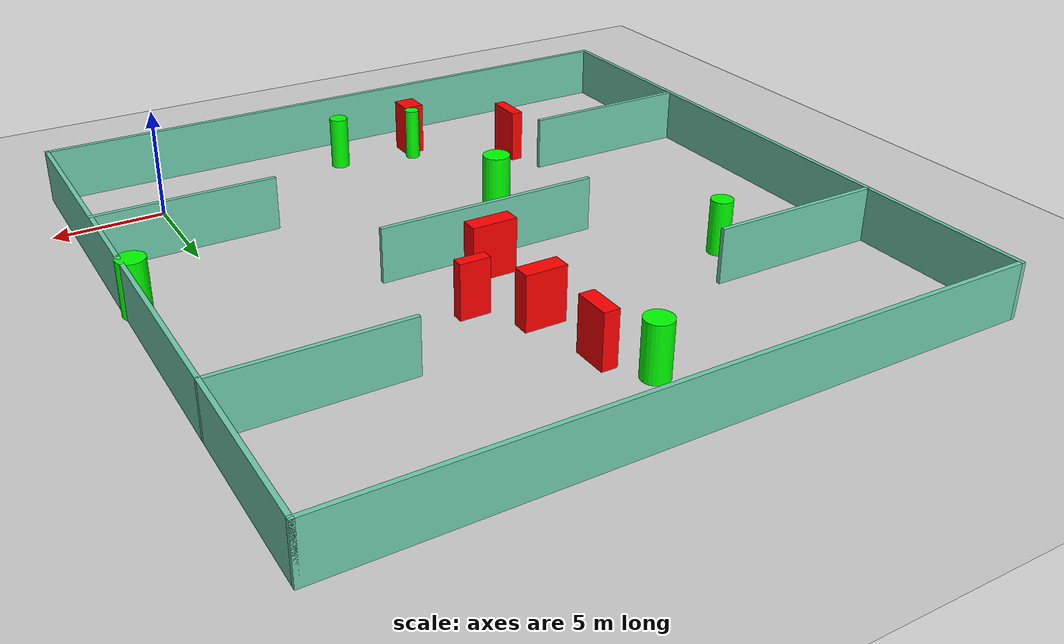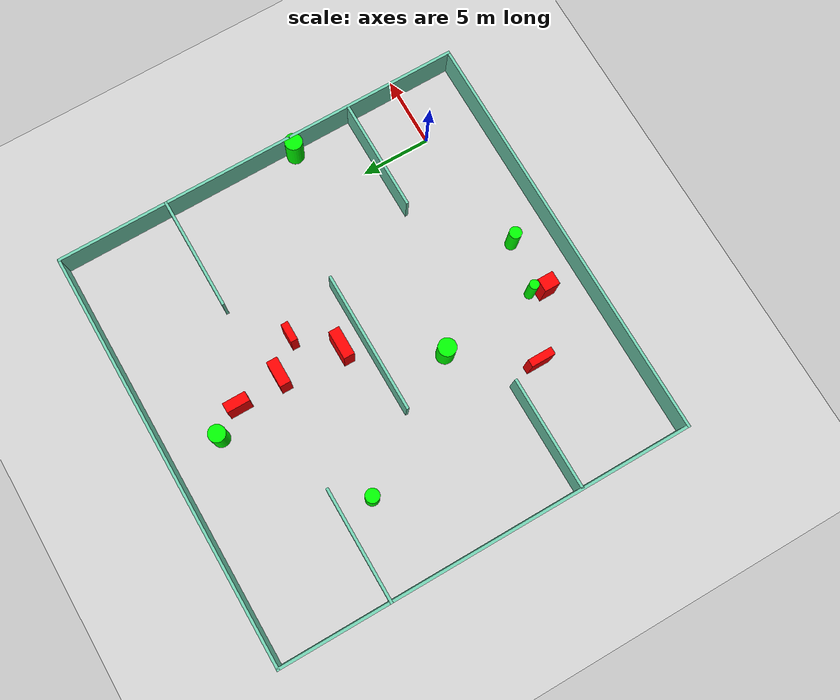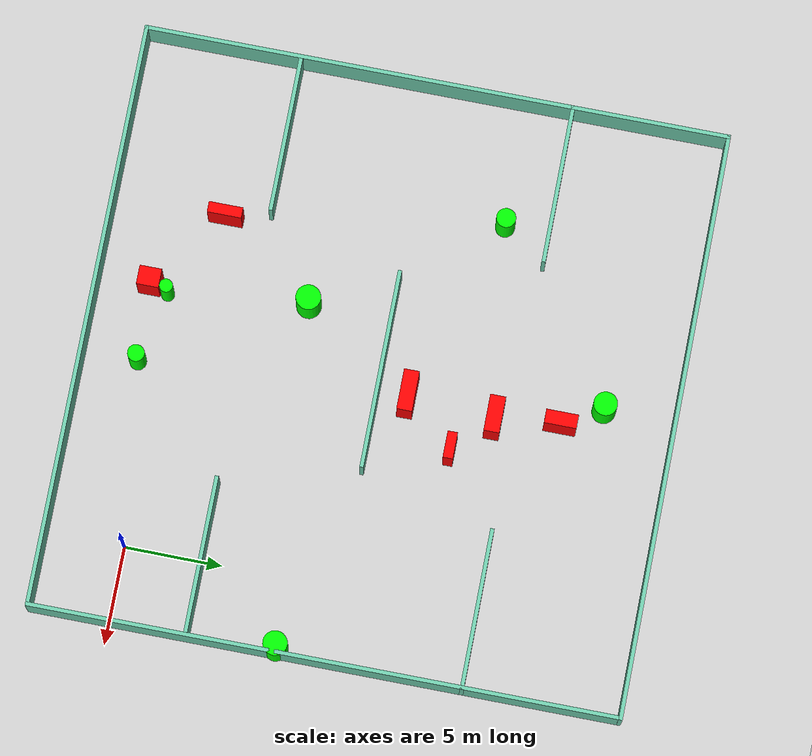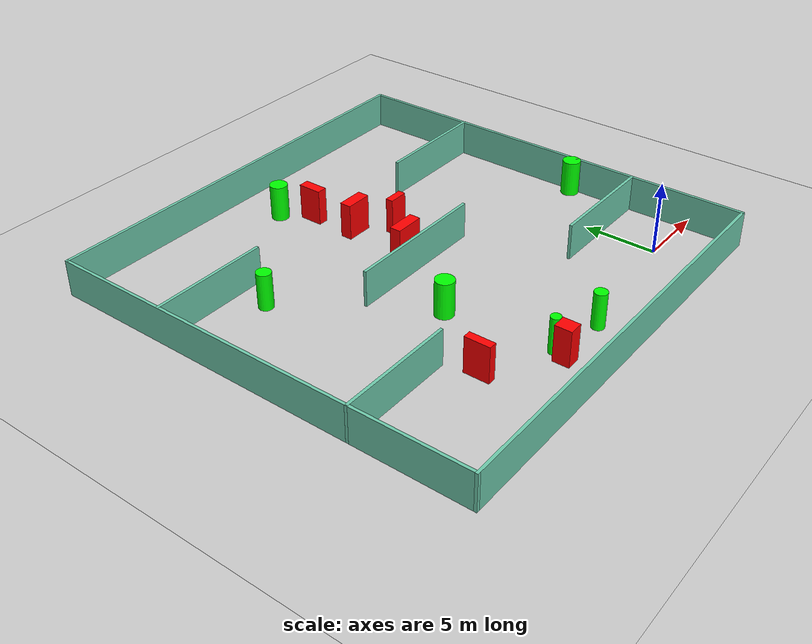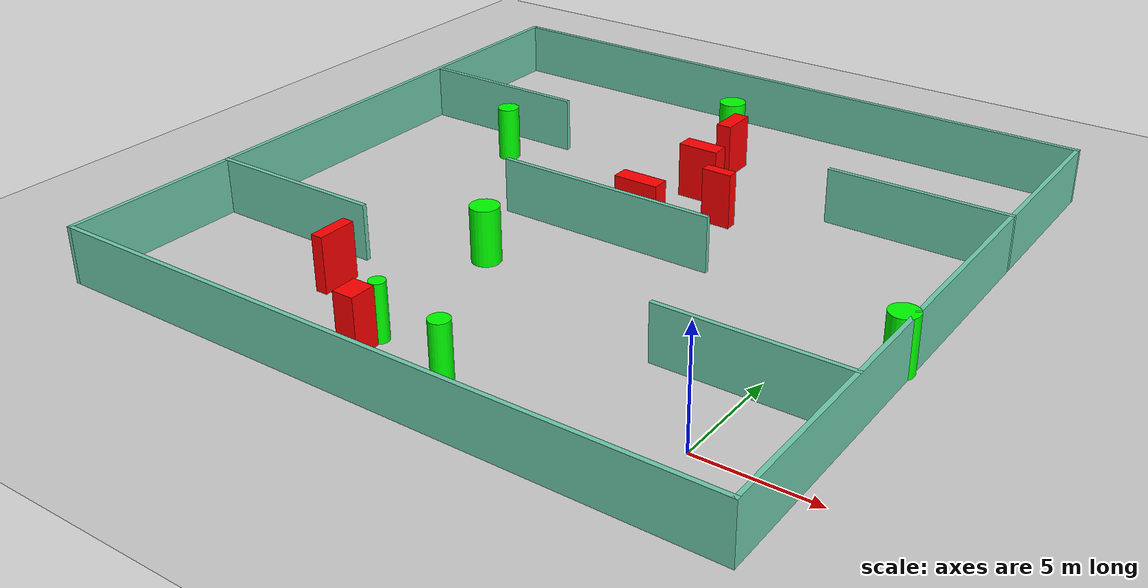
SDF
<sdf version="1.7">
 <world name="default">
  <light name="sun" type="directional">
   <pose>0 0 10 0 -0 0</pose>
   <diffuse>0.8 0.8 0.8 1</diffuse>
   <specular>0.2 0.2 0.2 1</specular>
   <attenuation>
    <range>1000</range>
    <constant>0.9</constant>
    <linear>0.01</linear>
    <quadratic>0.001</quadratic>
   </attenuation>
   <direction>-0.5 0.1 -0.9</direction>
   <spot><inner_angle>0</inner_angle><outer_angle>0</outer_angle><falloff>0</falloff></spot>
  </light>
  <model name="ground_plane">
   <static>1</static>
   <link name="link">
    <collision name="collision">
     <geometry><plane><normal>0 0 1</normal><size>100 100</size></plane></geometry>
     <surface>
      <contact><collide_bitmask>65535</collide_bitmask></contact>
      <friction><ode><mu>100</mu><mu2>50</mu2></ode></friction>
     </surface>
    </collision>
    <visual name="visual">
     <cast_shadows>0</cast_shadows>
     <geometry><plane><normal>0 0 1</normal><size>100 100</size></plane></geometry>
     <material>
      <script><uri>file://media/materials/scripts/gazebo.material</uri><name>Gazebo/Grey</name></script>
     </material>
    </visual>
   </link>
  </model>
  <gravity>0 0 -9.8</gravity>
  <magnetic_field>6e-06 2.3e-05 -4.2e-05</magnetic_field>
  <atmosphere type="adiabatic"/>
  <physics type="ode">
   <max_step_size>0.001</max_step_size>
   <real_time_factor>1</real_time_factor>
   <real_time_update_rate>1000</real_time_update_rate>
  </physics>
  <scene><ambient>0.4 0.4 0.4 1</ambient><background>0.7 0.7 0.7 1</background><shadows>1</shadows></scene>
  <spherical_coordinates>
   <surface_model>EARTH_WGS84</surface_model>
   <latitude_deg>0</latitude_deg>
   <longitude_deg>0</longitude_deg>
   <elevation>0</elevation>
   <heading_deg>0</heading_deg>
  </spherical_coordinates>
  <model name="my_base_walls">
   <link name="Wall_10">
    <collision name="Wall_10_Collision">
     <geometry><box><size>8.2 0.2 2.5</size></box></geometry>
     <pose>0 0 1.25 0 -0 0</pose>
    </collision>
    <visual name="Wall_10_Visual">
     <pose>0 0 1.25 0 -0 0</pose>
     <geometry><box><size>8.2 0.2 2.5</size></box></geometry>
     <material>
      <script><uri>file://media/materials/scripts/gazebo.material</uri><name>Gazebo/Grey</name></script>
      <ambient>0.435294 0.796078 0.67451 1</ambient>
     </material>
     <meta><layer>0</layer></meta>
    </visual>
    <pose>-11 -7 0 0 -0 0</pose>
   </link>
   <link name="Wall_12">
    <collision name="Wall_12_Collision">
     <geometry><box><size>8.2 0.2 2.5</size></box></geometry>
     <pose>0 0 1.25 0 -0 0</pose>
    </collision>
    <visual name="Wall_12_Visual">
     <pose>0 0 1.25 0 -0 0</pose>
     <geometry><box><size>8.2 0.2 2.5</size></box></geometry>
     <material>
      <script><uri>file://media/materials/scripts/gazebo.material</uri><name>Gazebo/Grey</name></script>
      <ambient>0.435294 0.796078 0.67451 1</ambient>
     </material>
     <meta><layer>0</layer></meta>
    </visual>
    <pose>-11 7 0 0 -0 0</pose>
   </link>
   <link name="Wall_14">
    <collision name="Wall_14_Collision">
     <geometry><box><size>8.2 0.2 2.5</size></box></geometry>
     <pose>0 0 1.25 0 -0 0</pose>
    </collision>
    <visual name="Wall_14_Visual">
     <pose>0 0 1.25 0 -0 0</pose>
     <geometry><box><size>8.2 0.2 2.5</size></box></geometry>
     <material>
      <script><uri>file://media/materials/scripts/gazebo.material</uri><name>Gazebo/Grey</name></script>
      <ambient>0.435294 0.796078 0.67451 1</ambient>
     </material>
     <meta><layer>0</layer></meta>
    </visual>
    <pose>11 7 0 0 -0 3.14159</pose>
   </link>
   <link name="Wall_16">
    <collision name="Wall_16_Collision">
     <geometry><box><size>10.2 0.2 2.5</size></box></geometry>
     <pose>0 0 1.25 0 -0 0</pose>
    </collision>
    <visual name="Wall_16_Visual">
     <pose>0 0 1.25 0 -0 0</pose>
     <geometry><box><size>10.2 0.2 2.5</size></box></geometry>
     <material>
      <script><uri>file://media/materials/scripts/gazebo.material</uri><name>Gazebo/Grey</name></script>
      <ambient>0.435294 0.796078 0.67451 1</ambient>
     </material>
     <meta><layer>0</layer></meta>
    </visual>
    <pose>0 0 0 0 -0 3.14159</pose>
   </link>
   <link name="Wall_2">
    <collision name="Wall_2_Collision">
     <geometry><box><size>30.2 0.2 2.5</size></box></geometry>
     <pose>0 0 1.25 0 -0 0</pose>
    </collision>
    <visual name="Wall_2_Visual">
     <pose>0 0 1.25 0 -0 0</pose>
     <geometry><box><size>30.2 0.2 2.5</size></box></geometry>
     <material>
      <script><uri>file://media/materials/scripts/gazebo.material</uri><name>Gazebo/Grey</name></script>
      <ambient>0.435294 0.796078 0.67451 1</ambient>
     </material>
     <meta><layer>0</layer></meta>
    </visual>
    <pose>0 -15 0 0 -0 3.14159</pose>
   </link>
   <link name="Wall_3">
    <collision name="Wall_3_Collision">
     <geometry><box><size>30.2 0.2 2.5</size></box></geometry>
     <pose>0 0 1.25 0 -0 0</pose>
    </collision>
    <visual name="Wall_3_Visual">
     <pose>0 0 1.25 0 -0 0</pose>
     <geometry><box><size>30.2 0.2 2.5</size></box></geometry>
     <material>
      <script><uri>file://media/materials/scripts/gazebo.material</uri><name>Gazebo/Grey</name></script>
      <ambient>0.435294 0.796078 0.67451 1</ambient>
     </material>
     <meta><layer>0</layer></meta>
    </visual>
    <pose>-15 0 0 0 -0 1.5708</pose>
   </link>
   <link name="Wall_4">
    <collision name="Wall_4_Collision">
     <geometry><box><size>30.2 0.2 2.5</size></box></geometry>
     <pose>0 0 1.25 0 -0 0</pose>
    </collision>
    <visual name="Wall_4_Visual">
     <pose>0 0 1.25 0 -0 0</pose>
     <geometry><box><size>30.2 0.2 2.5</size></box></geometry>
     <material>
      <script><uri>file://media/materials/scripts/gazebo.material</uri><name>Gazebo/Grey</name></script>
      <ambient>0.435294 0.796078 0.67451 1</ambient>
     </material>
     <meta><layer>0</layer></meta>
    </visual>
    <pose>0 15 0 0 -0 0</pose>
   </link>
   <link name="Wall_6">
    <collision name="Wall_6_Collision">
     <geometry><box><size>30.2 0.2 2.5</size></box></geometry>
     <pose>0 0 1.25 0 -0 0</pose>
    </collision>
    <visual name="Wall_6_Visual">
     <pose>0 0 1.25 0 -0 0</pose>
     <geometry><box><size>30.2 0.2 2.5</size></box></geometry>
     <material>
      <script><uri>file://media/materials/scripts/gazebo.material</uri><name>Gazebo/Grey</name></script>
      <ambient>0.435294 0.796078 0.67451 1</ambient>
     </material>
     <meta><layer>0</layer></meta>
    </visual>
    <pose>15 0 0 0 -0 1.5708</pose>
   </link>
   <link name="Wall_8">
    <collision name="Wall_8_Collision">
     <geometry><box><size>8.2 0.2 2.5</size></box></geometry>
     <pose>0 0 1.25 0 -0 0</pose>
    </collision>
    <visual name="Wall_8_Visual">
     <pose>0 0 1.25 0 -0 0</pose>
     <geometry><box><size>8.2 0.2 2.5</size></box></geometry>
     <material>
      <script><uri>file://media/materials/scripts/gazebo.material</uri><name>Gazebo/Grey</name></script>
      <ambient>0.435294 0.796078 0.67451 1</ambient>
     </material>
     <meta><layer>0</layer></meta>
    </visual>
    <pose>11 -7 0 0 -0 3.14159</pose>
   </link>
   <static>1</static>
   <pose>-11 11 0 0 -0 0</pose>
  </model>
  <model name="cylinder1">
   <static>1</static>
   <link name="link">
    <inertial>
     <mass>1</mass>
     <inertia><ixx>0.5</ixx><ixy>0</ixy><ixz>0</ixz><iyy>0.5</iyy><iyz>0</iyz><izz>1</izz></inertia>
    </inertial>
    <collision name="collision">
     <geometry><cylinder><radius>0.3443012919250671</radius><length>2.5</length></cylinder></geometry>
    </collision>
    <visual name="visual">
     <geometry><cylinder><radius>0.3443012919250671</radius><length>2.5</length></cylinder></geometry>
     <material>
      <ambient>0 1 0 1</ambient>
      <diffuse>0 1 0 1</diffuse>
      <specular>0.1 0.1 0.1 1</specular>
      <emissive>0 0 0 0</emissive>
     </material>
    </visual>
   </link>
   <pose>-13.101906956500972 -0.40080572191109853 1.25 0 0 0</pose>
  </model>
  <model name="cylinder2">
   <static>1</static>
   <link name="link">
    <inertial>
     <mass>1</mass>
     <inertia><ixx>0.5</ixx><ixy>0</ixy><ixz>0</ixz><iyy>0.5</iyy><iyz>0</iyz><izz>1</izz></inertia>
    </inertial>
    <collision name="collision">
     <geometry><cylinder><radius>0.6242023429719257</radius><length>2.5</length></cylinder></geometry>
    </collision>
    <visual name="visual">
     <geometry><cylinder><radius>0.6242023429719257</radius><length>2.5</length></cylinder></geometry>
     <material>
      <ambient>0 1 0 1</ambient>
      <diffuse>0 1 0 1</diffuse>
      <specular>0.1 0.1 0.1 1</specular>
      <emissive>0 0 0 0</emissive>
     </material>
    </visual>
   </link>
   <pose>3.5841282925572315 8.475043361144198 1.25 0 0 0</pose>
  </model>
  <model name="cylinder3">
   <static>1</static>
   <link name="link">
    <inertial>
     <mass>1</mass>
     <inertia><ixx>0.5</ixx><ixy>0</ixy><ixz>0</ixz><iyy>0.5</iyy><iyz>0</iyz><izz>1</izz></inertia>
    </inertial>
    <collision name="collision">
     <geometry><cylinder><radius>0.4965596192162449</radius><length>2.5</length></cylinder></geometry>
    </collision>
    <visual name="visual">
     <geometry><cylinder><radius>0.4965596192162449</radius><length>2.5</length></cylinder></geometry>
     <material>
      <ambient>0 1 0 1</ambient>
      <diffuse>0 1 0 1</diffuse>
      <specular>0.1 0.1 0.1 1</specular>
      <emissive>0 0 0 0</emissive>
     </material>
    </visual>
   </link>
   <pose>-19.757732893890733 15.740929418561201 1.25 0 0 0</pose>
  </model>
  <model name="cylinder4">
   <static>1</static>
   <link name="link">
    <inertial>
     <mass>1</mass>
     <inertia><ixx>0.5</ixx><ixy>0</ixy><ixz>0</ixz><iyy>0.5</iyy><iyz>0</iyz><izz>1</izz></inertia>
    </inertial>
    <collision name="collision">
     <geometry><cylinder><radius>0.4374805088878376</radius><length>2.5</length></cylinder></geometry>
    </collision>
    <visual name="visual">
     <geometry><cylinder><radius>0.4374805088878376</radius><length>2.5</length></cylinder></geometry>
     <material>
      <ambient>0 1 0 1</ambient>
      <diffuse>0 1 0 1</diffuse>
      <specular>0.1 0.1 0.1 1</specular>
      <emissive>0 0 0 0</emissive>
     </material>
    </visual>
   </link>
   <pose>-9.438640255684591 -1.2013782013210323 1.25 0 0 0</pose>
  </model>
  <model name="cylinder5">
   <static>1</static>
   <link name="link">
    <inertial>
     <mass>1</mass>
     <inertia><ixx>0.5</ixx><ixy>0</ixy><ixz>0</ixz><iyy>0.5</iyy><iyz>0</iyz><izz>1</izz></inertia>
    </inertial>
    <collision name="collision">
     <geometry><cylinder><radius>0.607507352526985</radius><length>2.5</length></cylinder></geometry>
    </collision>
    <visual name="visual">
     <geometry><cylinder><radius>0.607507352526985</radius><length>2.5</length></cylinder></geometry>
     <material>
      <ambient>0 1 0 1</ambient>
      <diffuse>0 1 0 1</diffuse>
      <specular>0.1 0.1 0.1 1</specular>
      <emissive>0 0 0 0</emissive>
     </material>
    </visual>
   </link>
   <pose>-11.374791600105626 22.389226400234843 1.25 0 0 0</pose>
  </model>
  <model name="cylinder6">
   <static>1</static>
   <link name="link">
    <inertial>
     <mass>1</mass>
     <inertia><ixx>0.5</ixx><ixy>0</ixy><ixz>0</ixz><iyy>0.5</iyy><iyz>0</iyz><izz>1</izz></inertia>
    </inertial>
    <collision name="collision">
     <geometry><cylinder><radius>0.6412312167358585</radius><length>2.5</length></cylinder></geometry>
    </collision>
    <visual name="visual">
     <geometry><cylinder><radius>0.6412312167358585</radius><length>2.5</length></cylinder></geometry>
     <material>
      <ambient>0 1 0 1</ambient>
      <diffuse>0 1 0 1</diffuse>
      <specular>0.1 0.1 0.1 1</specular>
      <emissive>0 0 0 0</emissive>
     </material>
    </visual>
   </link>
   <pose>-13.875081921566657 6.734573120912055 1.25 0 0 0</pose>
  </model>
  <model name="box1">
   <static>1</static>
   <link name="link">
    <inertial>
     <mass>1</mass>
     <inertia><ixx>0.083</ixx><ixy>0</ixy><ixz>0</ixz><iyy>0.083</iyy><iyz>0</iyz><izz>0.083</izz></inertia>
    </inertial>
    <collision name="collision">
     <geometry><box><size>0.706815236857573 1.6503156948048077 2.5</size></box></geometry>
    </collision>
    <visual name="visual">
     <geometry><box><size>0.706815236857573 1.6503156948048077 2.5</size></box></geometry>
     <material>
      <ambient>1 0 0 1</ambient>
      <diffuse>1 0 0 1</diffuse>
      <specular>0.1 0.1 0.1 1</specular>
      <emissive>0 0 0 0</emissive>
     </material>
    </visual>
    <sensor name="my_contact" type="contact">
     <contact><collision>box_collision</collision><topic>__default_topic__</topic></contact>
    </sensor>
   </link>
   <pose>-10.204555051092395 20.358539093449036 1.25 0 0 0</pose>
  </model>
  <model name="box2">
   <static>1</static>
   <link name="link">
    <inertial>
     <mass>1</mass>
     <inertia><ixx>0.083</ixx><ixy>0</ixy><ixz>0</ixz><iyy>0.083</iyy><iyz>0</iyz><izz>0.083</izz></inertia>
    </inertial>
    <collision name="collision">
     <geometry><box><size>0.9682472873308916 1.1350720812589394 2.5</size></box></geometry>
    </collision>
    <visual name="visual">
     <geometry><box><size>0.9682472873308916 1.1350720812589394 2.5</size></box></geometry>
     <material>
      <ambient>1 0 0 1</ambient>
      <diffuse>1 0 0 1</diffuse>
      <specular>0.1 0.1 0.1 1</specular>
      <emissive>0 0 0 0</emissive>
     </material>
    </visual>
    <sensor name="my_contact" type="contact">
     <contact><collision>box_collision</collision><topic>__default_topic__</topic></contact>
    </sensor>
   </link>
   <pose>-13.400841571127705 -1.330576774086869 1.25 0 0 0</pose>
  </model>
  <model name="box3">
   <static>1</static>
   <link name="link">
    <inertial>
     <mass>1</mass>
     <inertia><ixx>0.083</ixx><ixy>0</ixy><ixz>0</ixz><iyy>0.083</iyy><iyz>0</iyz><izz>0.083</izz></inertia>
    </inertial>
    <collision name="collision">
     <geometry><box><size>0.5439920022957707 1.7527173998799905 2.5</size></box></geometry>
    </collision>
    <visual name="visual">
     <geometry><box><size>0.5439920022957707 1.7527173998799905 2.5</size></box></geometry>
     <material>
      <ambient>1 0 0 1</ambient>
      <diffuse>1 0 0 1</diffuse>
      <specular>0.1 0.1 0.1 1</specular>
      <emissive>0 0 0 0</emissive>
     </material>
    </visual>
    <sensor name="my_contact" type="contact">
     <contact><collision>box_collision</collision><topic>__default_topic__</topic></contact>
    </sensor>
   </link>
   <pose>-17.480940348285863 1.7562732183569416 1.25 0 0 0</pose>
  </model>
  <model name="box4">
   <static>1</static>
   <link name="link">
    <inertial>
     <mass>1</mass>
     <inertia><ixx>0.083</ixx><ixy>0</ixy><ixz>0</ixz><iyy>0.083</iyy><iyz>0</iyz><izz>0.083</izz></inertia>
    </inertial>
    <collision name="collision">
     <geometry><box><size>1.361239666772883 0.5124883176869474 2.5</size></box></geometry>
    </collision>
    <visual name="visual">
     <geometry><box><size>1.361239666772883 0.5124883176869474 2.5</size></box></geometry>
     <material>
      <ambient>1 0 0 1</ambient>
      <diffuse>1 0 0 1</diffuse>
      <specular>0.1 0.1 0.1 1</specular>
      <emissive>0 0 0 0</emissive>
     </material>
    </visual>
    <sensor name="my_contact" type="contact">
     <contact><collision>box_collision</collision><topic>__default_topic__</topic></contact>
    </sensor>
   </link>
   <pose>-7.850388517493755 15.146306727279821 1.25 0 0 0</pose>
  </model>
  <model name="box5">
   <static>1</static>
   <link name="link">
    <inertial>
     <mass>1</mass>
     <inertia><ixx>0.083</ixx><ixy>0</ixy><ixz>0</ixz><iyy>0.083</iyy><iyz>0</iyz><izz>0.083</izz></inertia>
    </inertial>
    <collision name="collision">
     <geometry><box><size>2.065710367979665 0.7857053229203077 2.5</size></box></geometry>
    </collision>
    <visual name="visual">
     <geometry><box><size>2.065710367979665 0.7857053229203077 2.5</size></box></geometry>
     <material>
      <ambient>1 0 0 1</ambient>
      <diffuse>1 0 0 1</diffuse>
      <specular>0.1 0.1 0.1 1</specular>
      <emissive>0 0 0 0</emissive>
     </material>
    </visual>
    <sensor name="my_contact" type="contact">
     <contact><collision>box_collision</collision><topic>__default_topic__</topic></contact>
    </sensor>
   </link>
   <pose>-10.18119131108359 12.548594643734376 1.25 0 0 0</pose>
  </model>
  <model name="box6">
   <static>1</static>
   <link name="link">
    <inertial>
     <mass>1</mass>
     <inertia><ixx>0.083</ixx><ixy>0</ixy><ixz>0</ixz><iyy>0.083</iyy><iyz>0</iyz><izz>0.083</izz></inertia>
    </inertial>
    <collision name="collision">
     <geometry><box><size>1.8642655504953751 0.7992929257402341 2.5</size></box></geometry>
    </collision>
    <visual name="visual">
     <geometry><box><size>1.8642655504953751 0.7992929257402341 2.5</size></box></geometry>
     <material>
      <ambient>1 0 0 1</ambient>
      <diffuse>1 0 0 1</diffuse>
      <specular>0.1 0.1 0.1 1</specular>
      <emissive>0 0 0 0</emissive>
     </material>
    </visual>
    <sensor name="my_contact" type="contact">
     <contact><collision>box_collision</collision><topic>__default_topic__</topic></contact>
    </sensor>
   </link>
   <pose>-9.833205609091351 17.037502594101554 1.25 0 0 0</pose>
  </model>
 </world>
</sdf>
